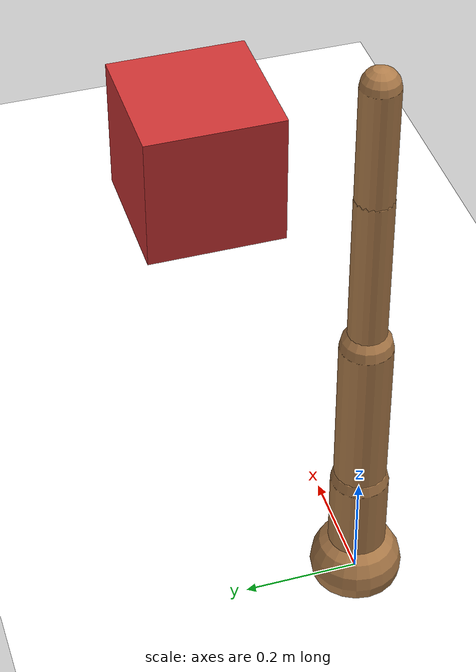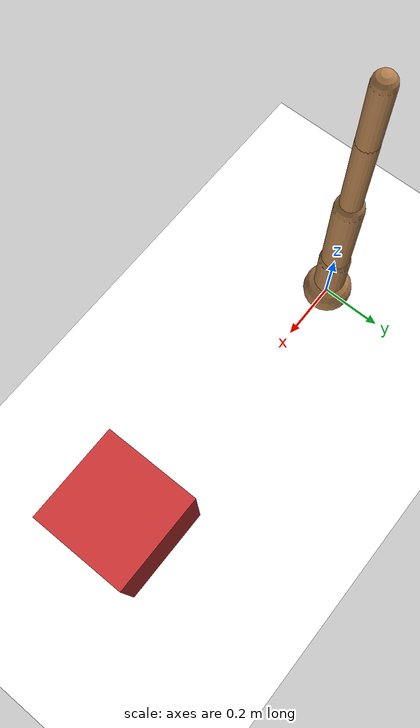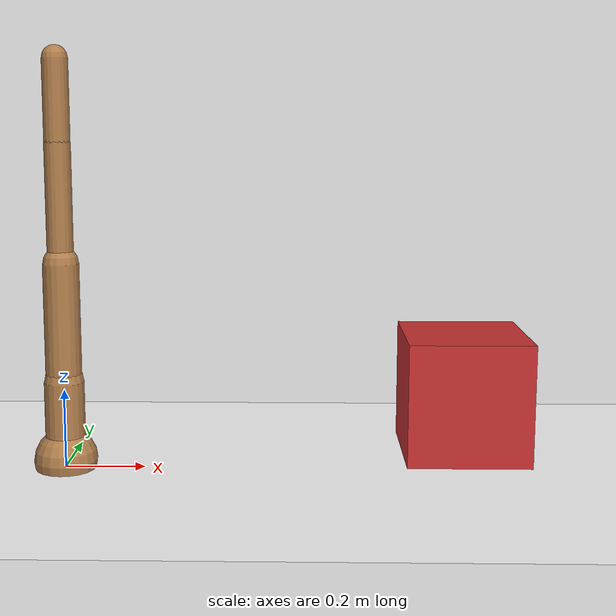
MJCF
<mujoco model="4-joint_vertical_arm_(colorful2_faithful,_cube_damping_fixed)">
  <asset>
    <texture name="skybox" type="skybox" builtin="gradient" rgb1=".2 .3 .4" rgb2="0 0 0" width="800" height="800" mark="random" markrgb="1 1 1"/>
    <texture name="grid" type="2d" builtin="checker" rgb1=".2 .1 .2" rgb2=".3 .2 .3" width="300" height="300" mark="edge" markrgb=".3 .2 .3"/>
    <material name="grid" texture="grid" texrepeat="1 1" texuniform="true" reflectance=".2"/>
    <material name="self" rgba=".7 .5 .3 1"/>
  </asset>
  <visual>
    <headlight ambient=".4 .4 .4" diffuse=".8 .8 .8" specular="0 0 0"/>
    <map znear=".001"/>
    <quality shadowsize="16384"/>
  </visual>
  <compiler angle="degree"/>
  <option integrator="RK4" timestep="0.01"/>
  <default>
    <joint armature="1" damping="1" limited="true"/>
    <geom conaffinity="0" condim="3" density="5.0" friction="1.0 0.5 0.5" margin="0.01" rgba=".7 .5 .3 1"/>
  </default>
  <worldbody>
    <light cutoff="100" diffuse="1 1 1" dir="0.3 0 -1.3" directional="true" exponent="1" pos="-30 0 130" specular=".1 .1 .1"/>
    <geom conaffinity="1" condim="3" name="floor" pos="0 0 0" rgba="1 1 1 1" size="200 200 .125" type="plane" material="grid"/>
    <body name="0" pos="0.000000 0.000000 0.020000">
      <camera name="track" mode="trackcom" pos="0 -3 0.5" xyaxes="1 0 0 0 0 1"/>
      <geom pos="0 0 0" size="0.08" type="sphere"/>
      <body name="1" pos="0.000000 0.000000 0.000000">
        <joint name="1_joint" type="hinge" pos="0 0 0" axis="0.000000 0.000000 1.000000" range="-180.0 180.0"/>
        <geom type="capsule" fromto="0.000000 0.000000 0.000000  0.000000 0.000000 0.201700" size="0.050"/>
        <body name="11" pos="0.000000 0.000000 0.201700">
          <joint name="11_joint" type="hinge" pos="0 0 0" axis="0.000000 1.000000 0.000000" range="-90.0 90.0"/>
          <geom type="capsule" fromto="0.000000 0.000000 0.000000  0.000000 0.000000 0.299600" size="0.045"/>
          <body name="111" pos="0.000000 0.000000 0.299600">
            <joint name="111_joint" type="hinge" pos="0 0 0" axis="0.000000 1.000000 0.000000" range="-90.0 90.0"/>
            <geom type="capsule" fromto="0.000000 0.000000 0.000000  0.000000 0.000000 0.297000" size="0.0326"/>
            <body name="1111" pos="0.000000 0.000000 0.297000">
              <joint name="1111_joint" type="hinge" pos="0 0 0" axis="0.000000 1.000000 0.000000" range="-90.0 90.0"/>
              <geom type="capsule" fromto="0.000000 0.000000 0.000000  0.000000 0.000000 0.203400" size="0.032"/>
            </body>
          </body>
        </body>
      </body>
    </body>
    <body name="cube" pos="1.000000 0.000000 0.200000">
      <joint name="cube_slide" type="slide" axis="1 0 0" damping="10.0" range="-2.0 200.0"/>
      <joint name="cube_slide2" type="slide" axis="0 1 0" damping="10.0" range="-100.0 100.0"/>
      <geom name="cube_geom" type="box" size="0.15 0.15 0.15" rgba="0.8 0.2 0.2 1.0" friction="0.5 0.1 0.1" density="100" contype="1" conaffinity="1"/>
    </body>
  </worldbody>
  <actuator>
    <motor ctrllimited="true" ctrlrange="-1.0 1.0" joint="1_joint" gear="150.0" name="1_joint"/>
    <motor ctrllimited="true" ctrlrange="-1.0 1.0" joint="11_joint" gear="150.0" name="11_joint"/>
    <motor ctrllimited="true" ctrlrange="-1.0 1.0" joint="111_joint" gear="100.0" name="111_joint"/>
    <motor ctrllimited="true" ctrlrange="-1.0 1.0" joint="1111_joint" gear="80.0" name="1111_joint"/>
  </actuator>
</mujoco>
